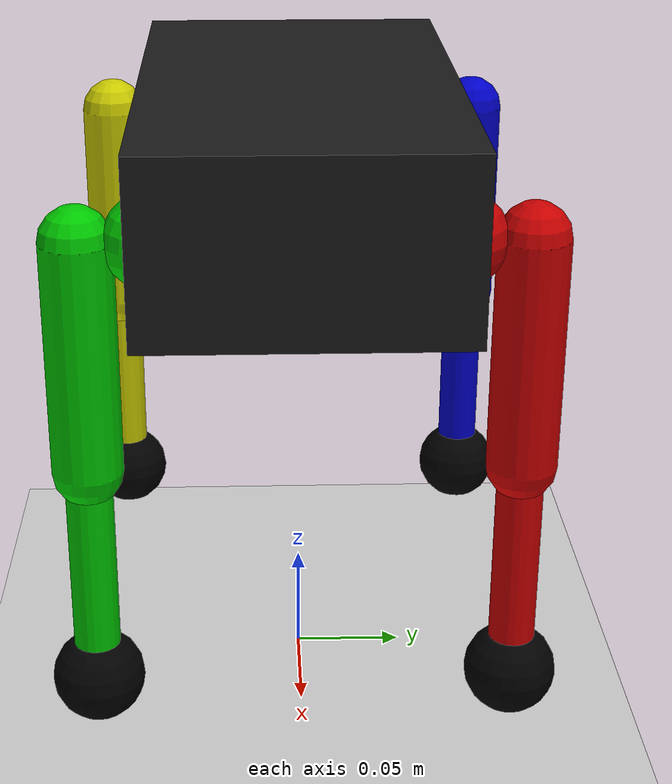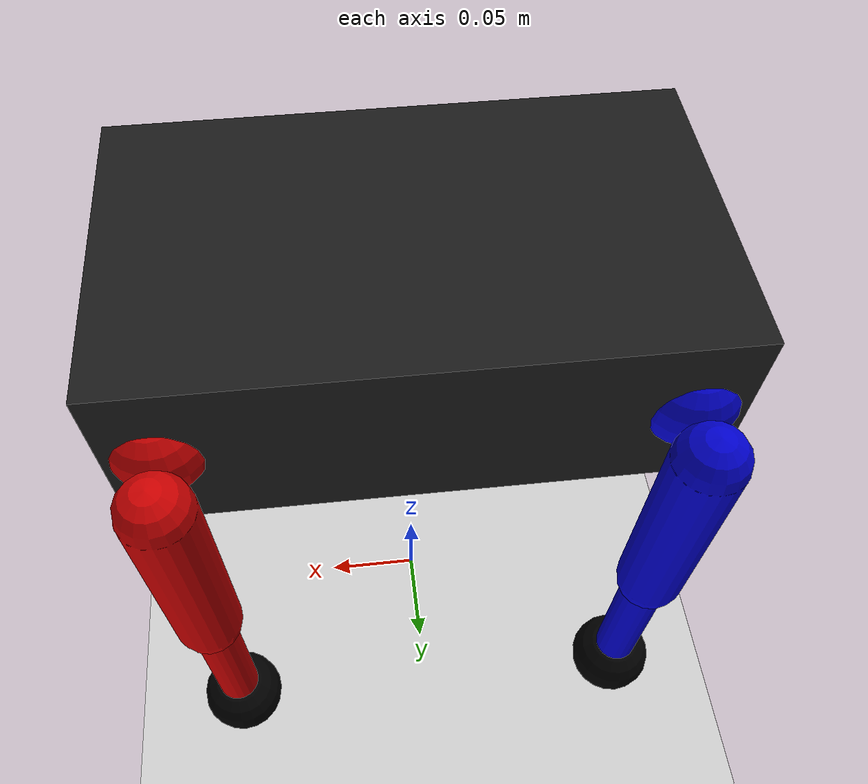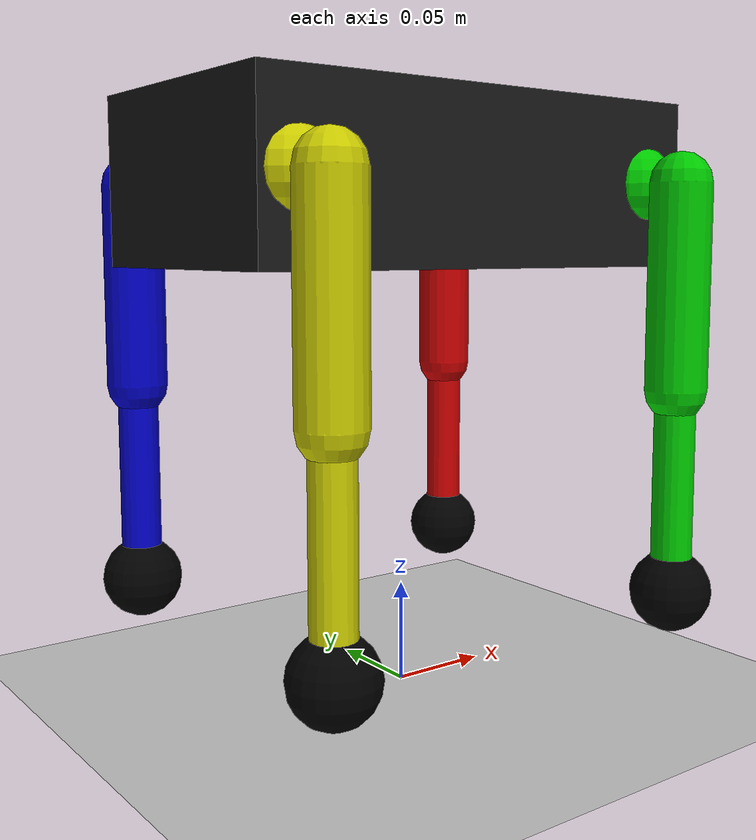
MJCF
<mujoco model="robot_scene">
    <include file="quad_bot.xml"/>

    <statistic center="0 0 0.7" extent="2"/>

    <visual>
        <headlight diffuse="0.6 0.6 0.6" ambient="0.3 0.3 0.3" specular="0 0 0"/>
        <rgba haze="0.15 0.25 0.35 1"/>
        <global azimuth="120" elevation="-20"/>
    </visual>

    <asset>
        <texture type="2d" name="groundplane" builtin="checker" mark="edge" rgb1="0.2 0.3 0.4" rgb2="0.1 0.2 0.3"
            markrgb="0.8 0.8 0.8" width="300" height="300"/>
        <material name="groundplane" texture="groundplane" texuniform="true" texrepeat="5 5" reflectance="0.2"/>
    </asset>

    <worldbody>
        <light pos="0 0 1.5" dir="0 0 -1" directional="true"/>

        <geom name="floor" size="0 0 0.05" type="plane" material="groundplane"/>
    </worldbody>
</mujoco>

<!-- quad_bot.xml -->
<mujoco model="quad_bot">
    <compiler angle="degree" coordinate="local" inertiafromgeom="true"/>
    <option gravity="0 0 -9.81" timestep="0.002"/>

    <default>
        <joint damping="0.5" armature="0.01" frictionloss="0.1"/>
        <geom friction="1.0 0.005 0.0001" solimp="0.9 0.95 0.001" solref="0.02 1" rgba="0.8 0.8 0.8 1"/>
    </default>

    <worldbody>
    <!-- yas e genera con env_cfgs -->

        <!-- CUERPO CENTRAL (trunk) -->
        <body name="trunk" pos="0 0 0.25">
            <freejoint name="root"/>
            <inertial pos="0 0 0" mass="1.9" diaginertia="0.004 0.008 0.010"/>
            <geom name="trunk_collision" type="box" size="0.12 0.07 0.04" rgba="0.1 0.1 0.1 1"/>

            <site name="imu_site" pos="0 0 0" size="0.01" type="sphere" rgba="1 1 1 1"/>

            <!-- SITES de referencia para el algoritmo del ANYmal C -->
            <site name="FL" pos="0.1 0.06 0" size="0.01" rgba="1 0 0 0"/>
            <site name="FR" pos="0.1 -0.06 0" size="0.01" rgba="0 1 0 0"/>
            <site name="RL" pos="-0.1 0.06 0" size="0.01" rgba="0 0 1 0"/>
            <site name="RR" pos="-0.1 -0.06 0" size="0.01" rgba="1 1 0 0"/>

            <!-- TODO: revisar los rangos de movimiento de las articulaciones  -->

            <!-- PATA DELANTERA IZQUIERDA (FL) -->
            <body name="FL_hip" pos="0.1 0.06 0">
                <joint name="FL_hip_roll" axis="1 0 0" range="-30 30"/>
                <geom name="FL_hip_collision" type="sphere" size="0.02" rgba="0.8 0 0 1"/>
                <body name="FL_thigh" pos="0 0.03 0">
                    <joint name="FL_hip_pitch" axis="0 1 0" range="-60 60"/>
                    <geom name="FL_thigh_collision" type="capsule" size="0.015" fromto="0 0 0 0 0 -0.1" rgba="0.8 0 0 1"/>
                    <body name="FL_calf" pos="0 0 -0.1">
                        <joint name="FL_knee" axis="0 1 0" range="-100 0"/>
                        <geom name="FL_calf_collision" type="capsule" size="0.01" fromto="0 0 0 0 0 -0.1" rgba="0.8 0 0 1"/>
                        <body name="FL_foot" pos="0 0 -0.1">
                            <geom name="FL_foot_collision" type="sphere" size="0.02" rgba="0 0 0 1"/>
                        </body>
                    </body>
                </body>
            </body>

            <!-- PATA DELANTERA DERECHA (FR) -->
            <body name="FR_hip" pos="0.1 -0.06 0">
                <joint name="FR_hip_roll" axis="-1 0 0" range="-30 30"/>
                <geom name="FR_hip_collision" type="sphere" size="0.02" rgba="0 0.8 0 1"/>
                <body name="FR_thigh" pos="0 -0.03 0">
                    <joint name="FR_hip_pitch" axis="0 1 0" range="-60 60"/>
                    <geom name="FR_thigh_collision" type="capsule" size="0.015" fromto="0 0 0 0 0 -0.1" rgba="0 0.8 0 1"/>
                    <body name="FR_calf" pos="0 0 -0.1">
                        <joint name="FR_knee" axis="0 1 0" range="-100 0"/>
                        <geom name="FR_calf_collision" type="capsule" size="0.01" fromto="0 0 0 0 0 -0.1" rgba="0 0.8 0 1"/>
                        <body name="FR_foot" pos="0 0 -0.1">
                            <geom name="FR_foot_collision" type="sphere" size="0.02" rgba="0 0 0 1"/>
                        </body>
                    </body>
                </body>
            </body>

            <!-- PATA TRASERA IZQUIERDA (RL) -->
            <body name="RL_hip" pos="-0.1 0.06 0">
                <joint name="RL_hip_roll" axis="1 0 0" range="-30 30"/>
                <geom name="RL_hip_collision" type="sphere" size="0.02" rgba="0 0 0.8 1"/>
                <body name="RL_thigh" pos="0 0.03 0">
                    <joint name="RL_hip_pitch" axis="0 1 0" range="-60 60"/>
                    <geom name="RL_thigh_collision" type="capsule" size="0.015" fromto="0 0 0 0 0 -0.1" rgba="0 0 0.8 1"/>
                    <body name="RL_calf" pos="0 0 -0.1">
                        <joint name="RL_knee" axis="0 1 0" range="-100 0"/>
                        <geom name="RL_calf_collision" type="capsule" size="0.01" fromto="0 0 0 0 0 -0.1" rgba="0 0 0.8 1"/>
                        <body name="RL_foot" pos="0 0 -0.1">
                            <geom name="RL_foot_collision" type="sphere" size="0.02" rgba="0 0 0 1"/>
                        </body>
                    </body>
                </body>
            </body>

            <!-- PATA TRASERA DERECHA (RR) -->
            <body name="RR_hip" pos="-0.1 -0.06 0">
                <joint name="RR_hip_roll" axis="-1 0 0" range="-30 30"/>
                <geom name="RR_hip_collision" type="sphere" size="0.02" rgba="0.8 0.8 0 1"/>
                <body name="RR_thigh" pos="0 -0.03 0">
                    <joint name="RR_hip_pitch" axis="0 1 0" range="-60 60"/>
                    <geom name="RR_thigh_collision" type="capsule" size="0.015" fromto="0 0 0 0 0 -0.1" rgba="0.8 0.8 0 1"/>
                    <body name="RR_calf" pos="0 0 -0.1">
                        <joint name="RR_knee" axis="0 1 0" range="-100 0"/>
                        <geom name="RR_calf_collision" type="capsule" size="0.01" fromto="0 0 0 0 0 -0.1" rgba="0.8 0.8 0 1"/>
                        <body name="RR_foot" pos="0 0 -0.1">
                            <geom name="RR_foot_collision" type="sphere" size="0.02" rgba="0 0 0 1"/>
                        </body>
                    </body>
                </body>
             </body>
        </body>
    </worldbody>

    <sensor>
        <accelerometer name="imu_accel" site="imu_site"/>
        <gyro name="imu_ang_vel" site="imu_site"/>
        <velocimeter name="imu_lin_vel" site="imu_site"/>
    </sensor>
</mujoco>
